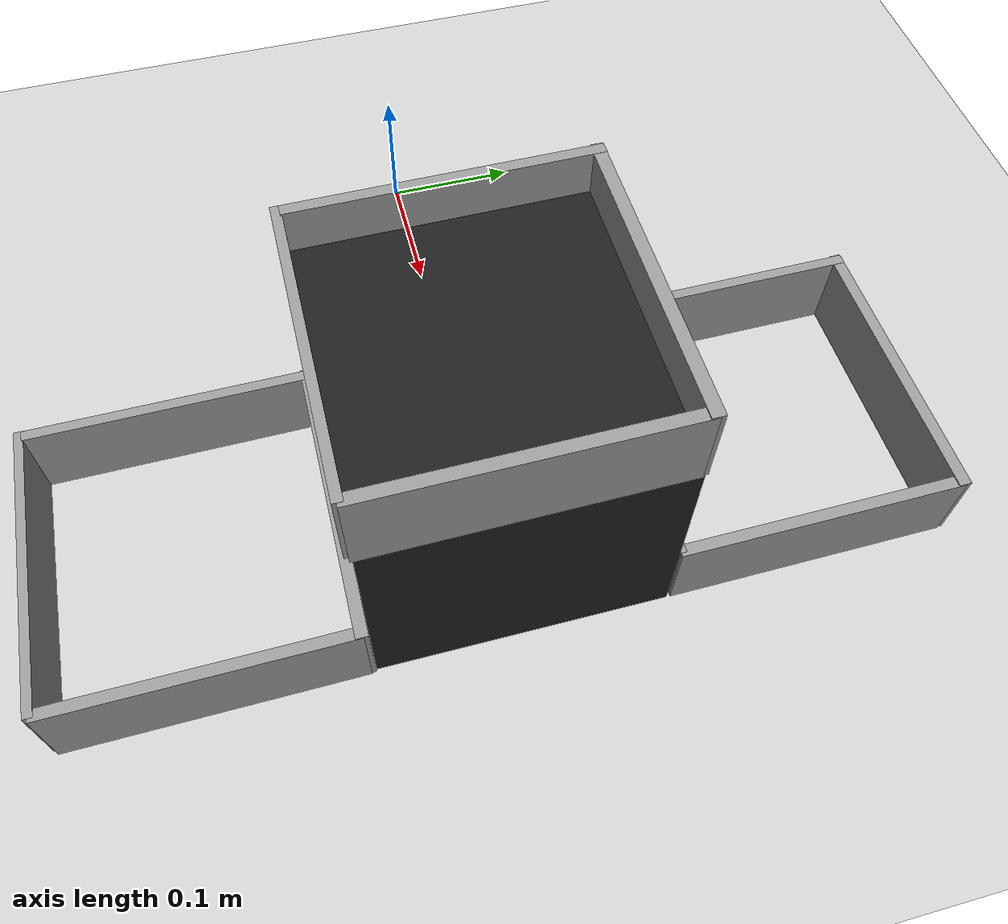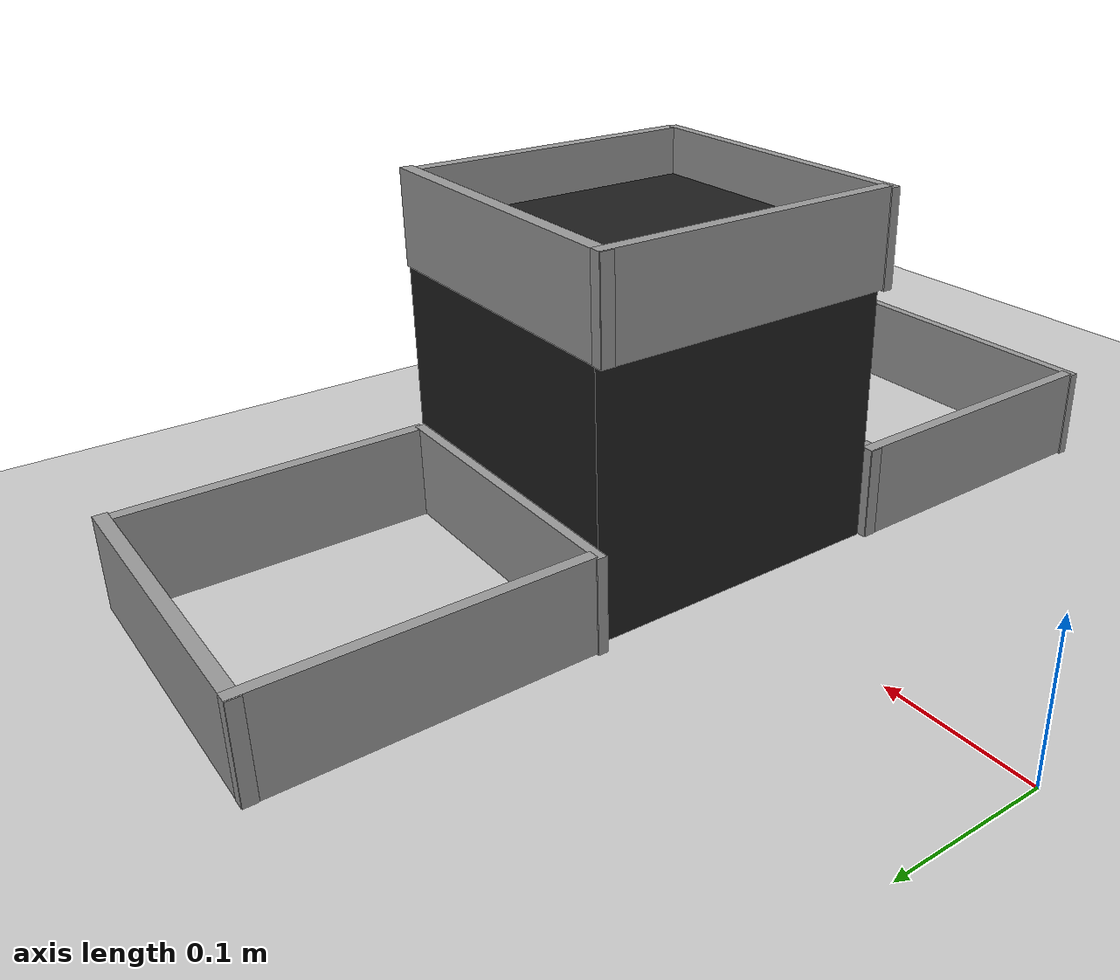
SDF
<sdf version="1.6">
 <world name="empty">
  <light name="sun" type="directional">
   <pose>0 0 10 0 -0 0</pose>
   <diffuse>0.8 0.8 0.8 1</diffuse>
   <specular>0.2 0.2 0.2 1</specular>
   <attenuation>
    <range>1000</range>
    <constant>0.9</constant>
    <linear>0.01</linear>
    <quadratic>0.001</quadratic>
   </attenuation>
   <direction>-0.5 0.1 -0.9</direction>
  </light>
  <model name="ground_plane">
   <static>1</static>
   <link name="link">
    <collision name="collision">
     <geometry><plane><normal>0 0 1</normal><size>100 100</size></plane></geometry>
     <surface><friction><ode><mu>100</mu><mu2>50</mu2></ode></friction></surface>
    </collision>
    <visual name="visual">
     <cast_shadows>0</cast_shadows>
     <geometry><plane><normal>0 0 1</normal><size>100 100</size></plane></geometry>
     <material>
      <script><uri>file://media/materials/scripts/gazebo.material</uri><name>Gazebo/Grey</name></script>
     </material>
    </visual>
   </link>
  </model>
  <physics name="default_physics" default="0" type="ode">
   <max_step_size>0.001</max_step_size>
   <real_time_factor>1</real_time_factor>
   <real_time_update_rate>1000</real_time_update_rate>
  </physics>
  <model name="table_box_model">
   <static>1</static>
   <pose>0.324867 -0.002458 0.1 0 -0 1.5708</pose>
   <link name="table_box_link">
    <inertial>
     <mass>1</mass>
     <inertia>
      <ixx>0.166667</ixx>
      <ixy>0</ixy>
      <ixz>0</ixz>
      <iyy>0.166667</iyy>
      <iyz>0</iyz>
      <izz>0.166667</izz>
     </inertia>
    </inertial>
    <collision name="collision">
     <geometry><box><size>0.205711 0.202538 0.2</size></box></geometry>
     <surface><friction><ode><mu>0.6</mu><mu2>0.6</mu2></ode></friction></surface>
    </collision>
    <visual name="visual">
     <geometry><box><size>0.205711 0.202538 0.2</size></box></geometry>
     <material>
      <script><name>Gazebo/Black</name><uri>file://media/materials/scripts/gazebo.material</uri></script>
     </material>
    </visual>
   </link>
  </model>
  <gravity>0 0 -9.81</gravity>
  <magnetic_field>6e-06 2.3e-05 -4.2e-05</magnetic_field>
  <atmosphere type="adiabatic"/>
  <scene><ambient>0.4 0.4 0.4 1</ambient><background>0.7 0.7 0.7 1</background><shadows>1</shadows></scene>
  <spherical_coordinates>
   <surface_model>EARTH_WGS84</surface_model>
   <latitude_deg>0</latitude_deg>
   <longitude_deg>0</longitude_deg>
   <elevation>0</elevation>
   <heading_deg>0</heading_deg>
  </spherical_coordinates>
  <model name="bbox">
   <pose>0.120327 -0.006727 0.02373 0 -0 0</pose>
   <link name="link">
    <inertial>
     <mass>0.000360326</mass>
     <inertia>
      <ixx>1.1838e-07</ixx>
      <ixy>0</ixy>
      <ixz>0</ixz>
      <iyy>1.42653e-06</iyy>
      <iyz>0</iyz>
      <izz>1.31074e-06</izz>
     </inertia>
    </inertial>
    <pose>0.200727 -0.099703 0.177148 0 -0 0</pose>
    <visual name="visual">
     <geometry><box><size>0.208827 0.006561 0.062445</size></box></geometry>
     <material>
      <script><name>Gazebo/Grey</name><uri>file://media/materials/scripts/gazebo.material</uri></script>
      <emissive>0 0 0 1</emissive>
      <shader type="pixel"/>
     </material>
    </visual>
    <collision name="collision">
     <geometry><box><size>0.208827 0.006561 0.062445</size></box></geometry>
     <surface>
      <friction>
       <ode><mu>1</mu><mu2>1</mu2><fdir1>0 0 0</fdir1><slip1>0</slip1><slip2>0</slip2></ode>
       <torsional>
        <coefficient>1</coefficient>
        <patch_radius>0</patch_radius>
        <surface_radius>0</surface_radius>
        <use_patch_radius>1</use_patch_radius>
        <ode><slip>0</slip></ode>
       </torsional>
      </friction>
      <bounce><restitution_coefficient>0</restitution_coefficient><threshold>1e+06</threshold></bounce>
      <contact>
       <collide_without_contact>0</collide_without_contact>
       <collide_without_contact_bitmask>1</collide_without_contact_bitmask>
       <collide_bitmask>1</collide_bitmask>
       <ode>
        <soft_cfm>0</soft_cfm>
        <soft_erp>0.2</soft_erp>
        <kp>1e+13</kp>
        <kd>1</kd>
        <max_vel>0.01</max_vel>
        <min_depth>0</min_depth>
       </ode>
       <bullet>
        <split_impulse>1</split_impulse>
        <split_impulse_penetration_threshold>-0.01</split_impulse_penetration_threshold>
        <soft_cfm>0</soft_cfm>
        <soft_erp>0.2</soft_erp>
        <kp>1e+13</kp>
        <kd>1</kd>
       </bullet>
      </contact>
     </surface>
    </collision>
   </link>
   <link name="link_clone">
    <inertial>
     <mass>0.000483234</mass>
     <inertia>
      <ixx>1.58017e-07</ixx>
      <ixy>0</ixy>
      <ixz>0</ixz>
      <iyy>1.95073e-06</iyy>
      <iyz>0</iyz>
      <izz>1.79888e-06</izz>
     </inertia>
    </inertial>
    <pose>0.200752 0.104095 0.178106 -1e-05 -0 -0.000119</pose>
    <visual name="visual">
     <geometry><box><size>0.211174 0.008749 0.062028</size></box></geometry>
     <material>
      <script><name>Gazebo/Grey</name><uri>file://media/materials/scripts/gazebo.material</uri></script>
      <shader type="pixel"/>
      <emissive>0 0 0 1</emissive>
     </material>
    </visual>
    <collision name="collision">
     <geometry><box><size>0.211174 0.008749 0.062028</size></box></geometry>
     <surface>
      <friction>
       <ode><mu>1</mu><mu2>1</mu2><fdir1>0 0 0</fdir1><slip1>0</slip1><slip2>0</slip2></ode>
       <torsional>
        <coefficient>1</coefficient>
        <patch_radius>0</patch_radius>
        <surface_radius>0</surface_radius>
        <use_patch_radius>1</use_patch_radius>
        <ode><slip>0</slip></ode>
       </torsional>
      </friction>
      <bounce><restitution_coefficient>0</restitution_coefficient><threshold>1e+06</threshold></bounce>
      <contact>
       <collide_without_contact>0</collide_without_contact>
       <collide_without_contact_bitmask>1</collide_without_contact_bitmask>
       <collide_bitmask>1</collide_bitmask>
       <ode>
        <soft_cfm>0</soft_cfm>
        <soft_erp>0.2</soft_erp>
        <kp>1e+13</kp>
        <kd>1</kd>
        <max_vel>0.01</max_vel>
        <min_depth>0</min_depth>
       </ode>
       <bullet>
        <split_impulse>1</split_impulse>
        <split_impulse_penetration_threshold>-0.01</split_impulse_penetration_threshold>
        <soft_cfm>0</soft_cfm>
        <soft_erp>0.2</soft_erp>
        <kp>1e+13</kp>
        <kd>1</kd>
       </bullet>
      </contact>
     </surface>
    </collision>
   </link>
   <link name="link_clone_0">
    <inertial>
     <mass>0.000453388</mass>
     <inertia>
      <ixx>1.51358e-07</ixx>
      <ixy>0</ixy>
      <ixz>0</ixz>
      <iyy>1.74868e-06</iyy>
      <iyz>0</iyz>
      <izz>1.60253e-06</izz>
     </inertia>
    </inertial>
    <pose>0.302983 0.002553 0.176771 0 -1e-05 -1.56405</pose>
    <visual name="visual">
     <geometry><box><size>0.205781 0.008304 0.062746</size></box></geometry>
     <material>
      <script><name>Gazebo/Grey</name><uri>file://media/materials/scripts/gazebo.material</uri></script>
      <shader type="pixel"/>
      <emissive>0 0 0 1</emissive>
     </material>
    </visual>
    <collision name="collision">
     <geometry><box><size>0.205781 0.008304 0.062746</size></box></geometry>
     <surface>
      <friction>
       <ode><mu>1</mu><mu2>1</mu2><fdir1>0 0 0</fdir1><slip1>0</slip1><slip2>0</slip2></ode>
       <torsional>
        <coefficient>1</coefficient>
        <patch_radius>0</patch_radius>
        <surface_radius>0</surface_radius>
        <use_patch_radius>1</use_patch_radius>
        <ode><slip>0</slip></ode>
       </torsional>
      </friction>
      <bounce><restitution_coefficient>0</restitution_coefficient><threshold>1e+06</threshold></bounce>
      <contact>
       <collide_without_contact>0</collide_without_contact>
       <collide_without_contact_bitmask>1</collide_without_contact_bitmask>
       <collide_bitmask>1</collide_bitmask>
       <ode>
        <soft_cfm>0</soft_cfm>
        <soft_erp>0.2</soft_erp>
        <kp>1e+13</kp>
        <kd>1</kd>
        <max_vel>0.01</max_vel>
        <min_depth>0</min_depth>
       </ode>
       <bullet>
        <split_impulse>1</split_impulse>
        <split_impulse_penetration_threshold>-0.01</split_impulse_penetration_threshold>
        <soft_cfm>0</soft_cfm>
        <soft_erp>0.2</soft_erp>
        <kp>1e+13</kp>
        <kd>1</kd>
       </bullet>
      </contact>
     </surface>
    </collision>
   </link>
   <link name="link_clone_0_clone">
    <inertial>
     <mass>0.000421107</mass>
     <inertia>
      <ixx>1.38824e-07</ixx>
      <ixy>0</ixy>
      <ixz>0</ixz>
      <iyy>1.62844e-06</iyy>
      <iyz>0</iyz>
      <izz>1.49377e-06</izz>
     </inertia>
    </inertial>
    <pose>0.100423 0.005505 0.178062 -0 -2e-05 -1.56415</pose>
    <visual name="visual">
     <geometry><box><size>0.206174 0.007696 0.062424</size></box></geometry>
     <material>
      <script><name>Gazebo/Grey</name><uri>file://media/materials/scripts/gazebo.material</uri></script>
      <shader type="pixel"/>
      <emissive>0 0 0 1</emissive>
     </material>
    </visual>
    <collision name="collision">
     <geometry><box><size>0.206174 0.007696 0.062424</size></box></geometry>
     <surface>
      <friction>
       <ode><mu>1</mu><mu2>1</mu2><fdir1>0 0 0</fdir1><slip1>0</slip1><slip2>0</slip2></ode>
       <torsional>
        <coefficient>1</coefficient>
        <patch_radius>0</patch_radius>
        <surface_radius>0</surface_radius>
        <use_patch_radius>1</use_patch_radius>
        <ode><slip>0</slip></ode>
       </torsional>
      </friction>
      <bounce><restitution_coefficient>0</restitution_coefficient><threshold>1e+06</threshold></bounce>
      <contact>
       <collide_without_contact>0</collide_without_contact>
       <collide_without_contact_bitmask>1</collide_without_contact_bitmask>
       <collide_bitmask>1</collide_bitmask>
       <ode>
        <soft_cfm>0</soft_cfm>
        <soft_erp>0.2</soft_erp>
        <kp>1e+13</kp>
        <kd>1</kd>
        <max_vel>0.01</max_vel>
        <min_depth>0</min_depth>
       </ode>
       <bullet>
        <split_impulse>1</split_impulse>
        <split_impulse_penetration_threshold>-0.01</split_impulse_penetration_threshold>
        <soft_cfm>0</soft_cfm>
        <soft_erp>0.2</soft_erp>
        <kp>1e+13</kp>
        <kd>1</kd>
       </bullet>
      </contact>
     </surface>
    </collision>
   </link>
   <joint name="link_JOINT_7" type="fixed">
    <parent>link</parent>
    <child>link_clone_0</child>
    <physics>
     <ode><limit><cfm>0</cfm><erp>0.2</erp></limit><suspension><cfm>0</cfm><erp>0.2</erp></suspension></ode>
    </physics>
   </joint>
   <joint name="link_clone_0_JOINT_8" type="fixed">
    <parent>link_clone_0</parent>
    <child>link_clone</child>
    <physics>
     <ode><limit><cfm>0</cfm><erp>0.2</erp></limit><suspension><cfm>0</cfm><erp>0.2</erp></suspension></ode>
    </physics>
   </joint>
   <joint name="link_clone_0_clone_JOINT_6" type="fixed">
    <parent>link_clone_0_clone</parent>
    <child>link</child>
    <physics>
     <ode><limit><cfm>0</cfm><erp>0.2</erp></limit><suspension><cfm>0</cfm><erp>0.2</erp></suspension></ode>
    </physics>
   </joint>
   <joint name="link_clone_JOINT_9" type="fixed">
    <parent>link_clone</parent>
    <child>link_clone_0_clone</child>
    <physics>
     <ode><limit><cfm>0</cfm><erp>0.2</erp></limit><suspension><cfm>0</cfm><erp>0.2</erp></suspension></ode>
    </physics>
   </joint>
   <static>1</static>
  </model>
  <model name="bbox_clone">
   <link name="link">
    <inertial>
     <mass>0.000360326</mass>
     <inertia>
      <ixx>1.1838e-07</ixx>
      <ixy>0</ixy>
      <ixz>0</ixz>
      <iyy>1.42653e-06</iyy>
      <iyz>0</iyz>
      <izz>1.31074e-06</izz>
     </inertia>
    </inertial>
    <pose>0.200727 -0.099703 0.177148 0 -0 0</pose>
    <visual name="visual">
     <geometry><box><size>0.208827 0.006561 0.062445</size></box></geometry>
     <material>
      <script><name>Gazebo/Grey</name><uri>file://media/materials/scripts/gazebo.material</uri></script>
      <emissive>0 0 0 1</emissive>
      <shader type="pixel"/>
     </material>
    </visual>
    <collision name="collision">
     <geometry><box><size>0.208827 0.006561 0.062445</size></box></geometry>
     <surface>
      <friction>
       <ode><mu>1</mu><mu2>1</mu2><fdir1>0 0 0</fdir1><slip1>0</slip1><slip2>0</slip2></ode>
       <torsional>
        <coefficient>1</coefficient>
        <patch_radius>0</patch_radius>
        <surface_radius>0</surface_radius>
        <use_patch_radius>1</use_patch_radius>
        <ode><slip>0</slip></ode>
       </torsional>
      </friction>
      <bounce><restitution_coefficient>0</restitution_coefficient><threshold>1e+06</threshold></bounce>
      <contact>
       <collide_without_contact>0</collide_without_contact>
       <collide_without_contact_bitmask>1</collide_without_contact_bitmask>
       <collide_bitmask>1</collide_bitmask>
       <ode>
        <soft_cfm>0</soft_cfm>
        <soft_erp>0.2</soft_erp>
        <kp>1e+13</kp>
        <kd>1</kd>
        <max_vel>0.01</max_vel>
        <min_depth>0</min_depth>
       </ode>
       <bullet>
        <split_impulse>1</split_impulse>
        <split_impulse_penetration_threshold>-0.01</split_impulse_penetration_threshold>
        <soft_cfm>0</soft_cfm>
        <soft_erp>0.2</soft_erp>
        <kp>1e+13</kp>
        <kd>1</kd>
       </bullet>
      </contact>
     </surface>
    </collision>
   </link>
   <link name="link_clone">
    <inertial>
     <mass>0.000483234</mass>
     <inertia>
      <ixx>1.58017e-07</ixx>
      <ixy>0</ixy>
      <ixz>0</ixz>
      <iyy>1.95073e-06</iyy>
      <iyz>0</iyz>
      <izz>1.79888e-06</izz>
     </inertia>
    </inertial>
    <pose>0.200752 0.104095 0.178106 -1e-05 -0 -0.000119</pose>
    <visual name="visual">
     <geometry><box><size>0.211174 0.008749 0.062028</size></box></geometry>
     <material>
      <script><name>Gazebo/Grey</name><uri>file://media/materials/scripts/gazebo.material</uri></script>
      <shader type="pixel"/>
      <emissive>0 0 0 1</emissive>
     </material>
    </visual>
    <collision name="collision">
     <geometry><box><size>0.211174 0.008749 0.062028</size></box></geometry>
     <surface>
      <friction>
       <ode><mu>1</mu><mu2>1</mu2><fdir1>0 0 0</fdir1><slip1>0</slip1><slip2>0</slip2></ode>
       <torsional>
        <coefficient>1</coefficient>
        <patch_radius>0</patch_radius>
        <surface_radius>0</surface_radius>
        <use_patch_radius>1</use_patch_radius>
        <ode><slip>0</slip></ode>
       </torsional>
      </friction>
      <bounce><restitution_coefficient>0</restitution_coefficient><threshold>1e+06</threshold></bounce>
      <contact>
       <collide_without_contact>0</collide_without_contact>
       <collide_without_contact_bitmask>1</collide_without_contact_bitmask>
       <collide_bitmask>1</collide_bitmask>
       <ode>
        <soft_cfm>0</soft_cfm>
        <soft_erp>0.2</soft_erp>
        <kp>1e+13</kp>
        <kd>1</kd>
        <max_vel>0.01</max_vel>
        <min_depth>0</min_depth>
       </ode>
       <bullet>
        <split_impulse>1</split_impulse>
        <split_impulse_penetration_threshold>-0.01</split_impulse_penetration_threshold>
        <soft_cfm>0</soft_cfm>
        <soft_erp>0.2</soft_erp>
        <kp>1e+13</kp>
        <kd>1</kd>
       </bullet>
      </contact>
     </surface>
    </collision>
   </link>
   <link name="link_clone_0">
    <inertial>
     <mass>0.000453388</mass>
     <inertia>
      <ixx>1.51358e-07</ixx>
      <ixy>0</ixy>
      <ixz>0</ixz>
      <iyy>1.74868e-06</iyy>
      <iyz>0</iyz>
      <izz>1.60253e-06</izz>
     </inertia>
    </inertial>
    <pose>0.302983 0.002553 0.176771 0 -1e-05 -1.56405</pose>
    <visual name="visual">
     <geometry><box><size>0.205781 0.008304 0.062746</size></box></geometry>
     <material>
      <script><name>Gazebo/Grey</name><uri>file://media/materials/scripts/gazebo.material</uri></script>
      <shader type="pixel"/>
      <emissive>0 0 0 1</emissive>
     </material>
    </visual>
    <collision name="collision">
     <geometry><box><size>0.205781 0.008304 0.062746</size></box></geometry>
     <surface>
      <friction>
       <ode><mu>1</mu><mu2>1</mu2><fdir1>0 0 0</fdir1><slip1>0</slip1><slip2>0</slip2></ode>
       <torsional>
        <coefficient>1</coefficient>
        <patch_radius>0</patch_radius>
        <surface_radius>0</surface_radius>
        <use_patch_radius>1</use_patch_radius>
        <ode><slip>0</slip></ode>
       </torsional>
      </friction>
      <bounce><restitution_coefficient>0</restitution_coefficient><threshold>1e+06</threshold></bounce>
      <contact>
       <collide_without_contact>0</collide_without_contact>
       <collide_without_contact_bitmask>1</collide_without_contact_bitmask>
       <collide_bitmask>1</collide_bitmask>
       <ode>
        <soft_cfm>0</soft_cfm>
        <soft_erp>0.2</soft_erp>
        <kp>1e+13</kp>
        <kd>1</kd>
        <max_vel>0.01</max_vel>
        <min_depth>0</min_depth>
       </ode>
       <bullet>
        <split_impulse>1</split_impulse>
        <split_impulse_penetration_threshold>-0.01</split_impulse_penetration_threshold>
        <soft_cfm>0</soft_cfm>
        <soft_erp>0.2</soft_erp>
        <kp>1e+13</kp>
        <kd>1</kd>
       </bullet>
      </contact>
     </surface>
    </collision>
   </link>
   <link name="link_clone_0_clone">
    <inertial>
     <mass>0.000421107</mass>
     <inertia>
      <ixx>1.38824e-07</ixx>
      <ixy>0</ixy>
      <ixz>0</ixz>
      <iyy>1.62844e-06</iyy>
      <iyz>0</iyz>
      <izz>1.49377e-06</izz>
     </inertia>
    </inertial>
    <pose>0.100423 0.005505 0.178062 -0 -2e-05 -1.56415</pose>
    <visual name="visual">
     <geometry><box><size>0.206174 0.007696 0.062424</size></box></geometry>
     <material>
      <script><name>Gazebo/Grey</name><uri>file://media/materials/scripts/gazebo.material</uri></script>
      <shader type="pixel"/>
      <emissive>0 0 0 1</emissive>
     </material>
    </visual>
    <collision name="collision">
     <geometry><box><size>0.206174 0.007696 0.062424</size></box></geometry>
     <surface>
      <friction>
       <ode><mu>1</mu><mu2>1</mu2><fdir1>0 0 0</fdir1><slip1>0</slip1><slip2>0</slip2></ode>
       <torsional>
        <coefficient>1</coefficient>
        <patch_radius>0</patch_radius>
        <surface_radius>0</surface_radius>
        <use_patch_radius>1</use_patch_radius>
        <ode><slip>0</slip></ode>
       </torsional>
      </friction>
      <bounce><restitution_coefficient>0</restitution_coefficient><threshold>1e+06</threshold></bounce>
      <contact>
       <collide_without_contact>0</collide_without_contact>
       <collide_without_contact_bitmask>1</collide_without_contact_bitmask>
       <collide_bitmask>1</collide_bitmask>
       <ode>
        <soft_cfm>0</soft_cfm>
        <soft_erp>0.2</soft_erp>
        <kp>1e+13</kp>
        <kd>1</kd>
        <max_vel>0.01</max_vel>
        <min_depth>0</min_depth>
       </ode>
       <bullet>
        <split_impulse>1</split_impulse>
        <split_impulse_penetration_threshold>-0.01</split_impulse_penetration_threshold>
        <soft_cfm>0</soft_cfm>
        <soft_erp>0.2</soft_erp>
        <kp>1e+13</kp>
        <kd>1</kd>
       </bullet>
      </contact>
     </surface>
    </collision>
   </link>
   <joint name="link_JOINT_7" type="fixed">
    <parent>link</parent>
    <child>link_clone_0</child>
    <physics>
     <ode><limit><cfm>0</cfm><erp>0.2</erp></limit><suspension><cfm>0</cfm><erp>0.2</erp></suspension></ode>
    </physics>
   </joint>
   <joint name="link_clone_0_JOINT_8" type="fixed">
    <parent>link_clone_0</parent>
    <child>link_clone</child>
    <physics>
     <ode><limit><cfm>0</cfm><erp>0.2</erp></limit><suspension><cfm>0</cfm><erp>0.2</erp></suspension></ode>
    </physics>
   </joint>
   <joint name="link_clone_0_clone_JOINT_6" type="fixed">
    <parent>link_clone_0_clone</parent>
    <child>link</child>
    <physics>
     <ode><limit><cfm>0</cfm><erp>0.2</erp></limit><suspension><cfm>0</cfm><erp>0.2</erp></suspension></ode>
    </physics>
   </joint>
   <joint name="link_clone_JOINT_9" type="fixed">
    <parent>link_clone</parent>
    <child>link_clone_0_clone</child>
    <physics>
     <ode><limit><cfm>0</cfm><erp>0.2</erp></limit><suspension><cfm>0</cfm><erp>0.2</erp></suspension></ode>
    </physics>
   </joint>
   <static>1</static>
   <pose>0.121725 -0.214048 -0.146169 0 -0 0</pose>
  </model>
  <model name="bbox_clone_clone">
   <link name="link">
    <inertial>
     <mass>0.000360326</mass>
     <inertia>
      <ixx>1.1838e-07</ixx>
      <ixy>0</ixy>
      <ixz>0</ixz>
      <iyy>1.42653e-06</iyy>
      <iyz>0</iyz>
      <izz>1.31074e-06</izz>
     </inertia>
    </inertial>
    <pose>0.200727 -0.099703 0.177148 0 -0 0</pose>
    <visual name="visual">
     <geometry><box><size>0.208827 0.006561 0.062445</size></box></geometry>
     <material>
      <script><name>Gazebo/Grey</name><uri>file://media/materials/scripts/gazebo.material</uri></script>
      <emissive>0 0 0 1</emissive>
      <shader type="pixel"/>
     </material>
    </visual>
    <collision name="collision">
     <geometry><box><size>0.208827 0.006561 0.062445</size></box></geometry>
     <surface>
      <friction>
       <ode><mu>1</mu><mu2>1</mu2><fdir1>0 0 0</fdir1><slip1>0</slip1><slip2>0</slip2></ode>
       <torsional>
        <coefficient>1</coefficient>
        <patch_radius>0</patch_radius>
        <surface_radius>0</surface_radius>
        <use_patch_radius>1</use_patch_radius>
        <ode><slip>0</slip></ode>
       </torsional>
      </friction>
      <bounce><restitution_coefficient>0</restitution_coefficient><threshold>1e+06</threshold></bounce>
      <contact>
       <collide_without_contact>0</collide_without_contact>
       <collide_without_contact_bitmask>1</collide_without_contact_bitmask>
       <collide_bitmask>1</collide_bitmask>
       <ode>
        <soft_cfm>0</soft_cfm>
        <soft_erp>0.2</soft_erp>
        <kp>1e+13</kp>
        <kd>1</kd>
        <max_vel>0.01</max_vel>
        <min_depth>0</min_depth>
       </ode>
       <bullet>
        <split_impulse>1</split_impulse>
        <split_impulse_penetration_threshold>-0.01</split_impulse_penetration_threshold>
        <soft_cfm>0</soft_cfm>
        <soft_erp>0.2</soft_erp>
        <kp>1e+13</kp>
        <kd>1</kd>
       </bullet>
      </contact>
     </surface>
    </collision>
   </link>
   <link name="link_clone">
    <inertial>
     <mass>0.000483234</mass>
     <inertia>
      <ixx>1.58017e-07</ixx>
      <ixy>0</ixy>
      <ixz>0</ixz>
      <iyy>1.95073e-06</iyy>
      <iyz>0</iyz>
      <izz>1.79888e-06</izz>
     </inertia>
    </inertial>
    <pose>0.200752 0.104095 0.178106 -1e-05 -0 -0.000119</pose>
    <visual name="visual">
     <geometry><box><size>0.211174 0.008749 0.062028</size></box></geometry>
     <material>
      <script><name>Gazebo/Grey</name><uri>file://media/materials/scripts/gazebo.material</uri></script>
      <shader type="pixel"/>
      <emissive>0 0 0 1</emissive>
     </material>
    </visual>
    <collision name="collision">
     <geometry><box><size>0.211174 0.008749 0.062028</size></box></geometry>
     <surface>
      <friction>
       <ode><mu>1</mu><mu2>1</mu2><fdir1>0 0 0</fdir1><slip1>0</slip1><slip2>0</slip2></ode>
       <torsional>
        <coefficient>1</coefficient>
        <patch_radius>0</patch_radius>
        <surface_radius>0</surface_radius>
        <use_patch_radius>1</use_patch_radius>
        <ode><slip>0</slip></ode>
       </torsional>
      </friction>
      <bounce><restitution_coefficient>0</restitution_coefficient><threshold>1e+06</threshold></bounce>
      <contact>
       <collide_without_contact>0</collide_without_contact>
       <collide_without_contact_bitmask>1</collide_without_contact_bitmask>
       <collide_bitmask>1</collide_bitmask>
       <ode>
        <soft_cfm>0</soft_cfm>
        <soft_erp>0.2</soft_erp>
        <kp>1e+13</kp>
        <kd>1</kd>
        <max_vel>0.01</max_vel>
        <min_depth>0</min_depth>
       </ode>
       <bullet>
        <split_impulse>1</split_impulse>
        <split_impulse_penetration_threshold>-0.01</split_impulse_penetration_threshold>
        <soft_cfm>0</soft_cfm>
        <soft_erp>0.2</soft_erp>
        <kp>1e+13</kp>
        <kd>1</kd>
       </bullet>
      </contact>
     </surface>
    </collision>
   </link>
   <link name="link_clone_0">
    <inertial>
     <mass>0.000453388</mass>
     <inertia>
      <ixx>1.51358e-07</ixx>
      <ixy>0</ixy>
      <ixz>0</ixz>
      <iyy>1.74868e-06</iyy>
      <iyz>0</iyz>
      <izz>1.60253e-06</izz>
     </inertia>
    </inertial>
    <pose>0.302983 0.002553 0.176771 0 -1e-05 -1.56405</pose>
    <visual name="visual">
     <geometry><box><size>0.205781 0.008304 0.062746</size></box></geometry>
     <material>
      <script><name>Gazebo/Grey</name><uri>file://media/materials/scripts/gazebo.material</uri></script>
      <shader type="pixel"/>
      <emissive>0 0 0 1</emissive>
     </material>
    </visual>
    <collision name="collision">
     <geometry><box><size>0.205781 0.008304 0.062746</size></box></geometry>
     <surface>
      <friction>
       <ode><mu>1</mu><mu2>1</mu2><fdir1>0 0 0</fdir1><slip1>0</slip1><slip2>0</slip2></ode>
       <torsional>
        <coefficient>1</coefficient>
        <patch_radius>0</patch_radius>
        <surface_radius>0</surface_radius>
        <use_patch_radius>1</use_patch_radius>
        <ode><slip>0</slip></ode>
       </torsional>
      </friction>
      <bounce><restitution_coefficient>0</restitution_coefficient><threshold>1e+06</threshold></bounce>
      <contact>
       <collide_without_contact>0</collide_without_contact>
       <collide_without_contact_bitmask>1</collide_without_contact_bitmask>
       <collide_bitmask>1</collide_bitmask>
       <ode>
        <soft_cfm>0</soft_cfm>
        <soft_erp>0.2</soft_erp>
        <kp>1e+13</kp>
        <kd>1</kd>
        <max_vel>0.01</max_vel>
        <min_depth>0</min_depth>
       </ode>
       <bullet>
        <split_impulse>1</split_impulse>
        <split_impulse_penetration_threshold>-0.01</split_impulse_penetration_threshold>
        <soft_cfm>0</soft_cfm>
        <soft_erp>0.2</soft_erp>
        <kp>1e+13</kp>
        <kd>1</kd>
       </bullet>
      </contact>
     </surface>
    </collision>
   </link>
   <link name="link_clone_0_clone">
    <inertial>
     <mass>0.000421107</mass>
     <inertia>
      <ixx>1.38824e-07</ixx>
      <ixy>0</ixy>
      <ixz>0</ixz>
      <iyy>1.62844e-06</iyy>
      <iyz>0</iyz>
      <izz>1.49377e-06</izz>
     </inertia>
    </inertial>
    <pose>0.100423 0.005505 0.178062 -0 -2e-05 -1.56415</pose>
    <visual name="visual">
     <geometry><box><size>0.206174 0.007696 0.062424</size></box></geometry>
     <material>
      <script><name>Gazebo/Grey</name><uri>file://media/materials/scripts/gazebo.material</uri></script>
      <shader type="pixel"/>
      <emissive>0 0 0 1</emissive>
     </material>
    </visual>
    <collision name="collision">
     <geometry><box><size>0.206174 0.007696 0.062424</size></box></geometry>
     <surface>
      <friction>
       <ode><mu>1</mu><mu2>1</mu2><fdir1>0 0 0</fdir1><slip1>0</slip1><slip2>0</slip2></ode>
       <torsional>
        <coefficient>1</coefficient>
        <patch_radius>0</patch_radius>
        <surface_radius>0</surface_radius>
        <use_patch_radius>1</use_patch_radius>
        <ode><slip>0</slip></ode>
       </torsional>
      </friction>
      <bounce><restitution_coefficient>0</restitution_coefficient><threshold>1e+06</threshold></bounce>
      <contact>
       <collide_without_contact>0</collide_without_contact>
       <collide_without_contact_bitmask>1</collide_without_contact_bitmask>
       <collide_bitmask>1</collide_bitmask>
       <ode>
        <soft_cfm>0</soft_cfm>
        <soft_erp>0.2</soft_erp>
        <kp>1e+13</kp>
        <kd>1</kd>
        <max_vel>0.01</max_vel>
        <min_depth>0</min_depth>
       </ode>
       <bullet>
        <split_impulse>1</split_impulse>
        <split_impulse_penetration_threshold>-0.01</split_impulse_penetration_threshold>
        <soft_cfm>0</soft_cfm>
        <soft_erp>0.2</soft_erp>
        <kp>1e+13</kp>
        <kd>1</kd>
       </bullet>
      </contact>
     </surface>
    </collision>
   </link>
   <joint name="link_JOINT_7" type="fixed">
    <parent>link</parent>
    <child>link_clone_0</child>
    <physics>
     <ode><limit><cfm>0</cfm><erp>0.2</erp></limit><suspension><cfm>0</cfm><erp>0.2</erp></suspension></ode>
    </physics>
   </joint>
   <joint name="link_clone_0_JOINT_8" type="fixed">
    <parent>link_clone_0</parent>
    <child>link_clone</child>
    <physics>
     <ode><limit><cfm>0</cfm><erp>0.2</erp></limit><suspension><cfm>0</cfm><erp>0.2</erp></suspension></ode>
    </physics>
   </joint>
   <joint name="link_clone_0_clone_JOINT_6" type="fixed">
    <parent>link_clone_0_clone</parent>
    <child>link</child>
    <physics>
     <ode><limit><cfm>0</cfm><erp>0.2</erp></limit><suspension><cfm>0</cfm><erp>0.2</erp></suspension></ode>
    </physics>
   </joint>
   <joint name="link_clone_JOINT_9" type="fixed">
    <parent>link_clone</parent>
    <child>link_clone_0_clone</child>
    <physics>
     <ode><limit><cfm>0</cfm><erp>0.2</erp></limit><suspension><cfm>0</cfm><erp>0.2</erp></suspension></ode>
    </physics>
   </joint>
   <static>1</static>
   <pose>0.11837 0.203503 -0.146169 0 -0 0</pose>
  </model>
 </world>
</sdf>
